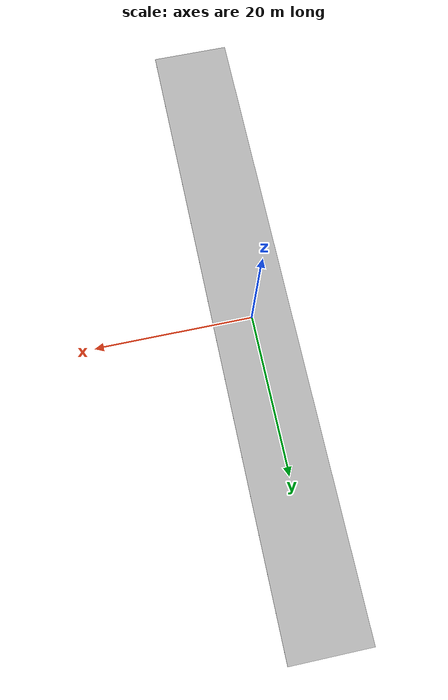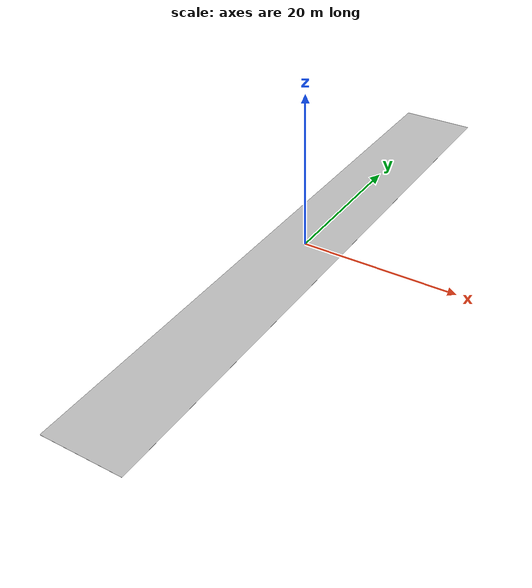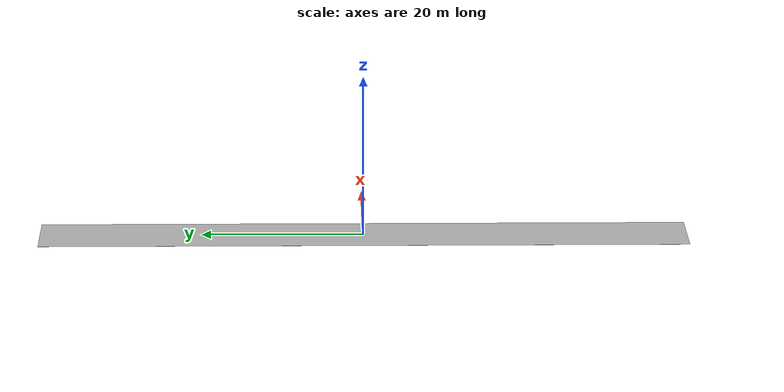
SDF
<?xml version='1.0'?>
<sdf version="1.6">
<model name="straight">
  <pose>0 0 0 0 0 0</pose>
    <link name="link">
      <visual name="visual">
        <geometry>
          <box>
            <size>10 80 0.01</size>
          </box>
        </geometry>
	<material>
          <script>
            <uri>model://straight/materials/straight.material</uri>
            <name>straight</name>
          </script>
        </material>
      </visual>
    </link>
    <static>1</static>
  </model>
</sdf>
